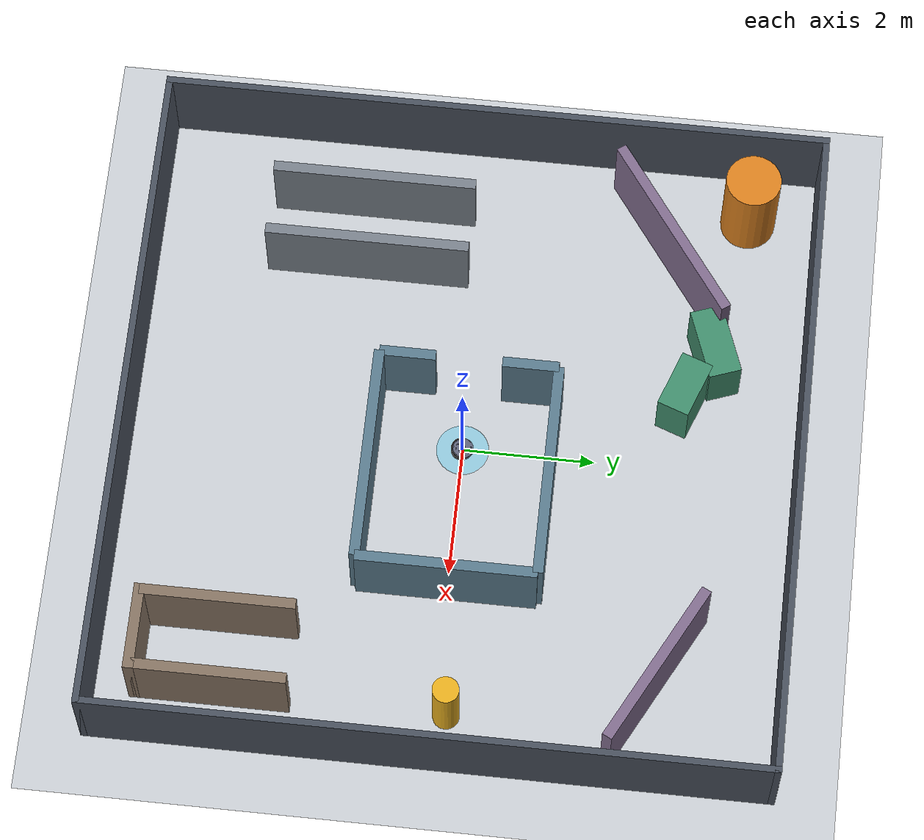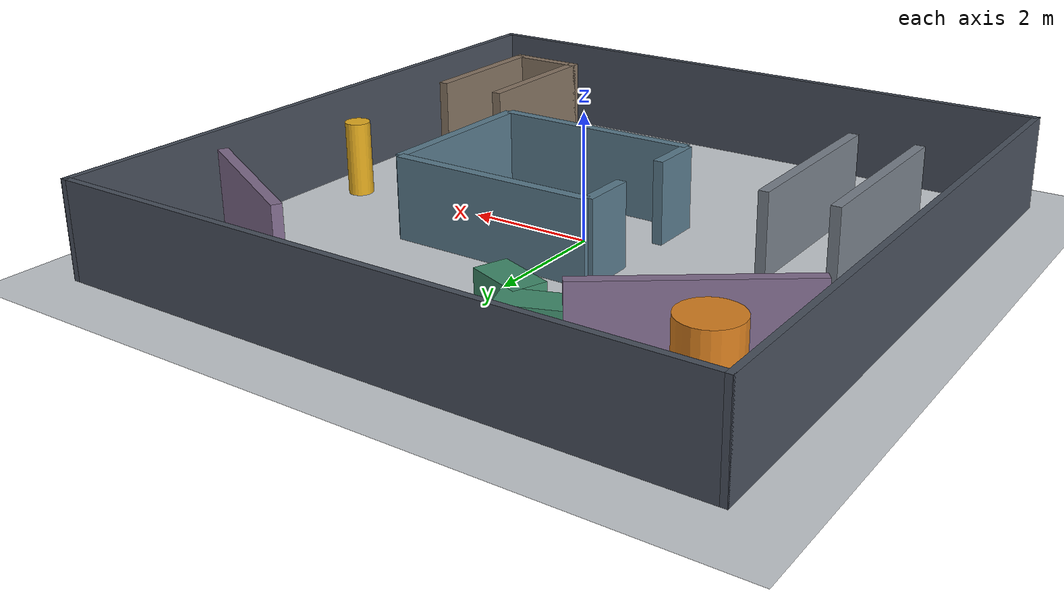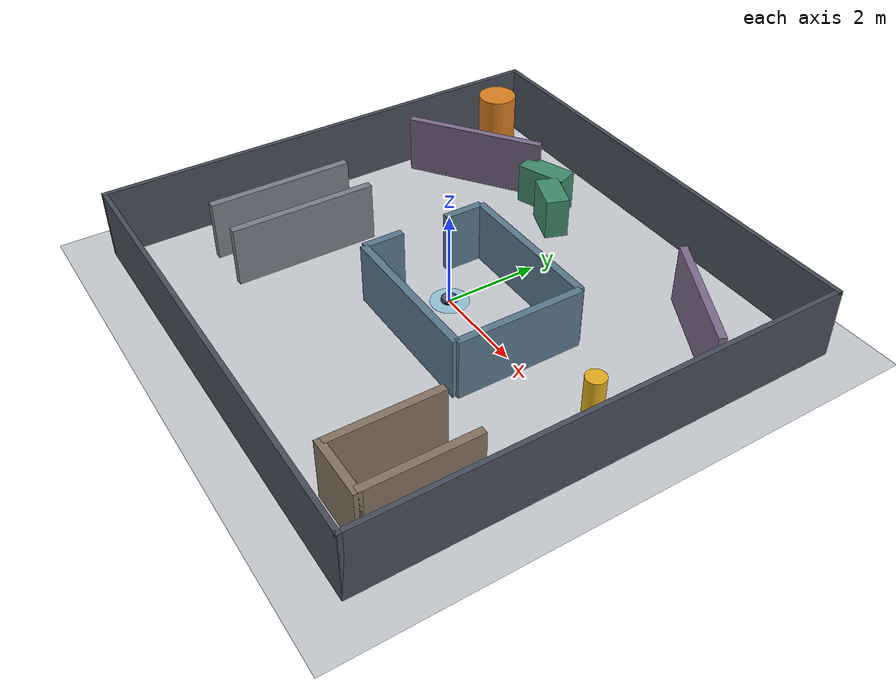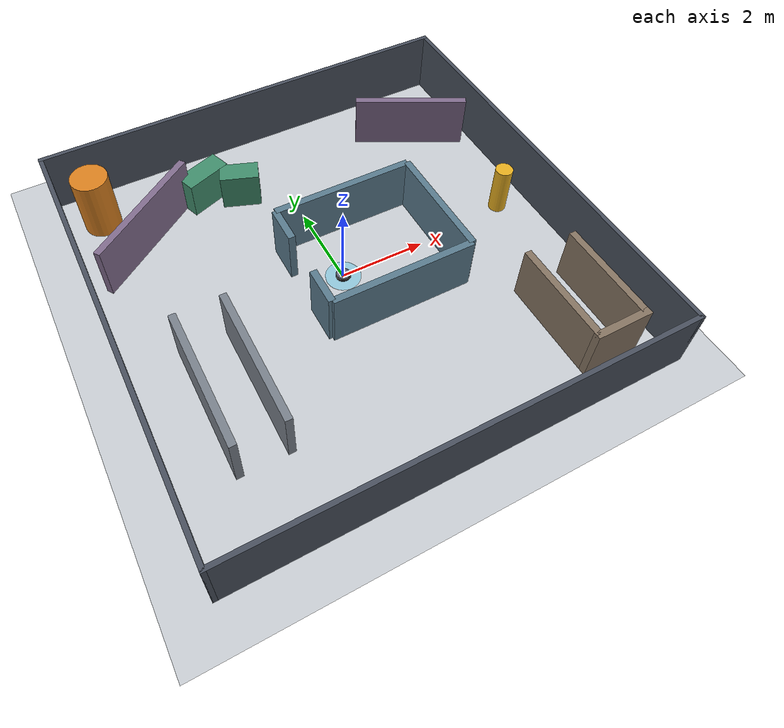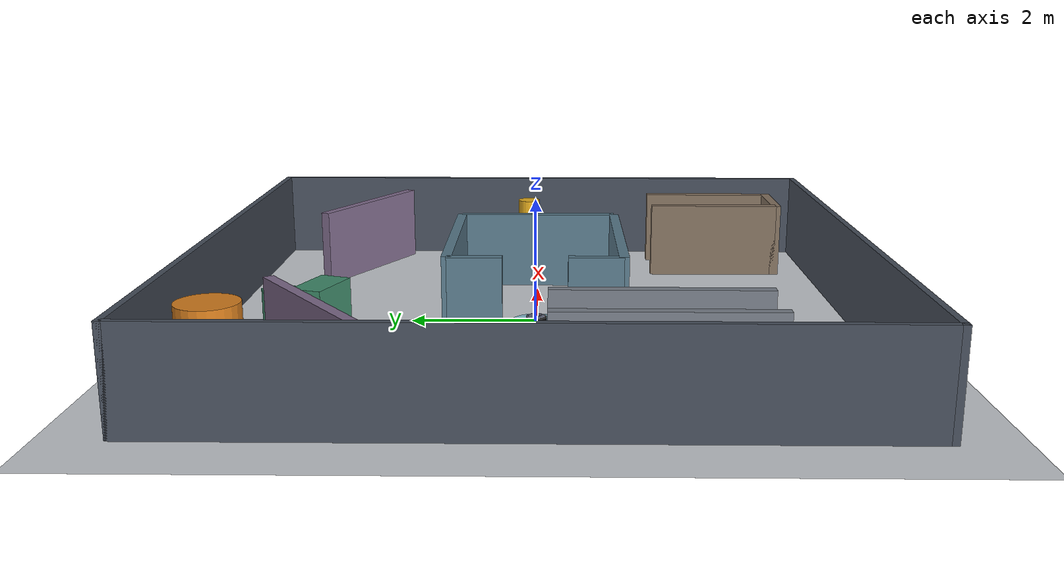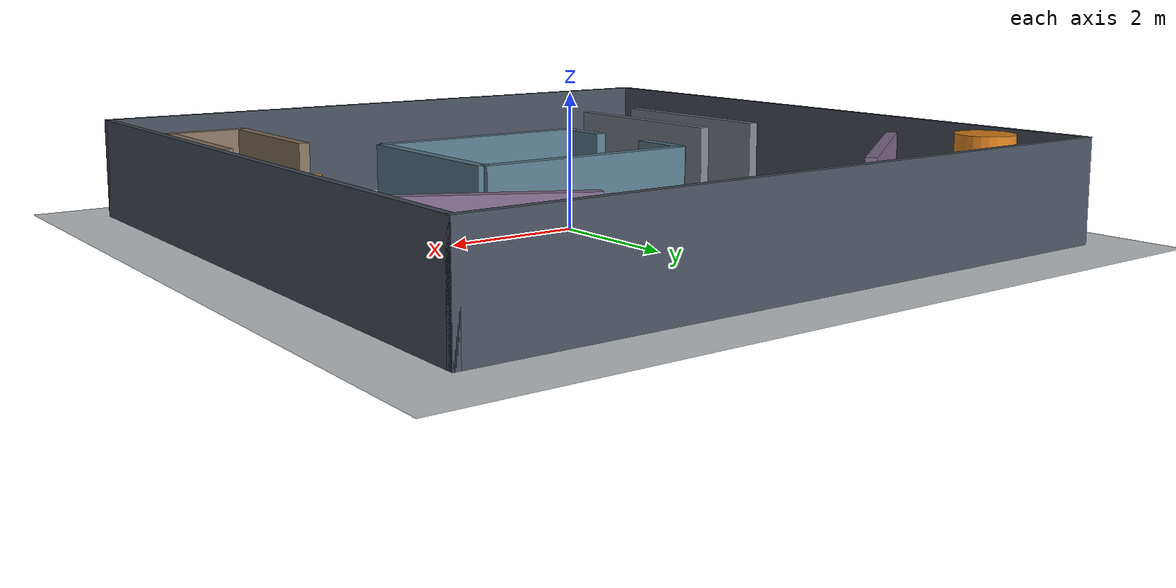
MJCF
<mujoco model="turtlebot4_slam_mixed_test_lab">
  <compiler angle="radian"/>
  <option gravity="0 0 -9.81" timestep="0.01"/>
  <include file="turtlebot4.xml"/>
  <worldbody>
    <light pos="0 0 6" dir="0 0 -1" diffuse="0.85 0.85 0.85"/>
    <geom name="floor" type="plane" size="6 6 0.1" rgba="0.78 0.80 0.82 1" friction="1 0.005 0.0001"/>
    <geom name="start_marker" type="cylinder" pos="0 0 0.006" size="0.4 0.005" rgba="0.1 0.75 0.95 0.3" contype="0" conaffinity="0"/>

    <!-- Outer shell: 10 m x 10 m. -->
    <geom name="outer_n" type="box" pos="0 5.05 0.75" size="5.1 0.05 0.75" rgba="0.28 0.31 0.36 1"/>
    <geom name="outer_s" type="box" pos="0 -5.05 0.75" size="5.1 0.05 0.75" rgba="0.28 0.31 0.36 1"/>
    <geom name="outer_e" type="box" pos="5.05 0 0.75" size="0.05 5.1 0.75" rgba="0.28 0.31 0.36 1"/>
    <geom name="outer_w" type="box" pos="-5.05 0 0.75" size="0.05 5.1 0.75" rgba="0.28 0.31 0.36 1"/>

    <!-- Offset central island creates two loop-closure choices. -->
    <geom name="island_n" type="box" pos="0.7 1.35 0.65" size="1.65 0.08 0.65" rgba="0.35 0.48 0.55 1"/>
    <geom name="island_s" type="box" pos="0.7 -1.35 0.65" size="1.65 0.08 0.65" rgba="0.35 0.48 0.55 1"/>
    <geom name="island_e" type="box" pos="2.35 0 0.65" size="0.08 1.35 0.65" rgba="0.35 0.48 0.55 1"/>
    <!-- 1.0 m doorway in the west wall connects the start area to the test course. -->
    <geom name="island_w_n" type="box" pos="-0.95 0.925 0.65" size="0.08 0.425 0.65" rgba="0.35 0.48 0.55 1"/>
    <geom name="island_w_s" type="box" pos="-0.95 -0.925 0.65" size="0.08 0.425 0.65" rgba="0.35 0.48 0.55 1"/>

    <!-- Diagonal corridor tests non-axis-aligned scan matching. -->
    <geom name="diag_left" type="box" pos="-3.45 2.85 0.65" size="1.55 0.08 0.65" euler="0 0 0.62" rgba="0.50 0.42 0.55 1"/>
    <geom name="diag_right" type="box" pos="3.55 3.20 0.65" size="1.35 0.08 0.65" euler="0 0 -0.48" rgba="0.50 0.42 0.55 1"/>

    <!-- Narrow passage: approximately 0.9 m clear width. -->
    <geom name="narrow_left" type="box" pos="-3.85 -1.75 0.65" size="0.08 1.55 0.65" rgba="0.47 0.50 0.54 1"/>
    <geom name="narrow_right" type="box" pos="-2.79 -1.75 0.65" size="0.08 1.55 0.65" rgba="0.47 0.50 0.54 1"/>

    <!-- Cul-de-sac for recovery and local-planner testing. -->
    <geom name="dead_end_left" type="box" pos="3.20 -3.25 0.65" size="0.08 1.15 0.65" rgba="0.52 0.45 0.38 1"/>
    <geom name="dead_end_right" type="box" pos="4.35 -3.25 0.65" size="0.08 1.15 0.65" rgba="0.52 0.45 0.38 1"/>
    <geom name="dead_end_cap" type="box" pos="3.775 -4.40 0.65" size="0.655 0.08 0.65" rgba="0.52 0.45 0.38 1"/>

    <!-- Mixed primitives provide distinct range signatures. -->
    <geom name="pillar_large" type="cylinder" pos="-4.25 4.0 0.75" size="0.42 0.75" rgba="0.85 0.50 0.12 1"/>
    <geom name="pillar_small" type="cylinder" pos="4.25 0.2 0.60" size="0.20 0.60" rgba="0.90 0.68 0.12 1"/>
    <geom name="triangle_hint_a" type="box" pos="-1.8 3.65 0.45" size="0.55 0.25 0.45" euler="0 0 0.35" rgba="0.25 0.55 0.42 1"/>
    <geom name="triangle_hint_b" type="box" pos="-1.05 3.25 0.45" size="0.45 0.25 0.45" euler="0 0 -0.35" rgba="0.25 0.55 0.42 1"/>
  </worldbody>
</mujoco>

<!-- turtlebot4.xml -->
<mujoco model="turtlebot4">
  <compiler angle="radian" coordinate="local" meshdir="./assets/meshes" autolimits="true"/>
  <size nstack="300000" nuser_geom="1"/>
  <option gravity="0 0 -9.81" timestep="0.002"/>

  <asset>
    <material name="metal" rgba=".9 .95 .95 1"/>
    <material name="black" rgba="0 0 0 1"/>
    <material name="white" rgba="1 1 1 1"/>
    <material name="gray" rgba="0.371705 0.392426 0.474270 1"/>
    <mesh file="body_visual_processed.stl" scale="0.1 0.1 0.1"/>
    <mesh file="bumper_visual.obj" scale="0.001 0.001 0.001"/>
    <mesh file="top_reduced.stl" scale="0.001 0.001 0.001"/>
    <mesh file="weight_block.stl" scale="0.001 0.001 0.001"/>
    <mesh file="wheel.stl" scale="0.001 0.001 0.001"/>
  </asset>

  <worldbody>
    <body name="base" pos="0 0 0.0392">
      <freejoint name="floating_base_joint"/>

      <!-- Robot geoms use group 1. The custom LiDAR ray caster includes
           group 0 only, preventing self-detection without changing collision. -->
      <geom type="mesh" mesh="body_visual_processed" material="gray" mass="0.269" group="1"/>

      <site name="base_frame" pos="0 0 0" quat="1 0 0 0" size="0.003"/>
      <site name="imu" pos="0.051 -0.035 0.0293"
            quat="1 0 0 0" size="0.003"/>

      <body name="bumper" pos="0 0 0" axisangle="0 0 1 4.71239">
        <geom type="mesh" mesh="bumper_visual" material="black" mass="0.1" group="1"/>
      </body>

      <body name="wheel_l" pos="0.11755 0.002 -0.0032">
        <geom type="mesh" mesh="wheel" group="1"/>
        <joint name="left" damping=".03" actuatorfrcrange="-.4 .4"
               pos="0 0 0" axis="1 0 0"/>
      </body>

      <body name="wheel_r" pos="-0.117 0.002 -0.0032">
        <geom type="mesh" mesh="wheel" group="1"/>
        <joint name="right" damping=".03" actuatorfrcrange="-.4 .4"
               pos="0 0 0" axis="1 0 0"/>
      </body>

      <body name="wheel_f" pos="0 -0.125 -0.026">
        <geom type="sphere" size="0.013 0.013" group="1"/>
        <joint type="ball"/>
      </body>

      <!-- Fixed 2D LiDAR frame. A complete 360-degree scan is generated
           by t2DLiDARSensor with mj_multiRay at one simulation timestamp. -->
      <body name="lidar" pos="0 0 0.08">
        <geom name="lidar_head_geom" type="cylinder" size="0.035 0.015"
              rgba="0.1 0.1 0.1 1" mass="0.01" group="1"/>
        <site name="laser_site" pos="0 0 0" quat="1 0 0 0"
              size="0.003" rgba="0 1 0 0.5"/>
      </body>
    </body>
  </worldbody>

  <tendon>
    <fixed name="forward">
      <joint joint="left" coef=".83"/>
      <joint joint="right" coef=".83"/>
    </fixed>
    <fixed name="turn">
      <joint joint="left" coef="-.1"/>
      <joint joint="right" coef=".1"/>
    </fixed>
  </tendon>

  <actuator>
    <motor name="forward" tendon="forward" ctrlrange="-0.5 0.5"/>
    <motor name="turn" tendon="turn" ctrlrange="-2 2"/>
  </actuator>

  <sensor>
    <!-- IMU -->
    <framequat name="imu_quat" objtype="site" objname="imu"/>
    <gyro name="imu_ang" site="imu"/>
    <accelerometer name="imu_acc" site="imu"/>

    <!-- Base pose and velocity for odometry. DSS keeps MuJoCo coordinates;
         dss_ros2_bridge converts them to ROS REP-103. -->
    <framepos name="base_pos" objtype="site" objname="base_frame"/>
    <framequat name="base_quat" objtype="site" objname="base_frame"/>
    <velocimeter name="base_linvel" site="base_frame"/>
    <gyro name="base_angvel" site="base_frame"/>

    <!-- Wheel joint states -->
    <jointpos name="left_pos" joint="left"/>
    <jointvel name="left_vel" joint="left"/>
    <jointpos name="right_pos" joint="right"/>
    <jointvel name="right_vel" joint="right"/>
  </sensor>
</mujoco>
